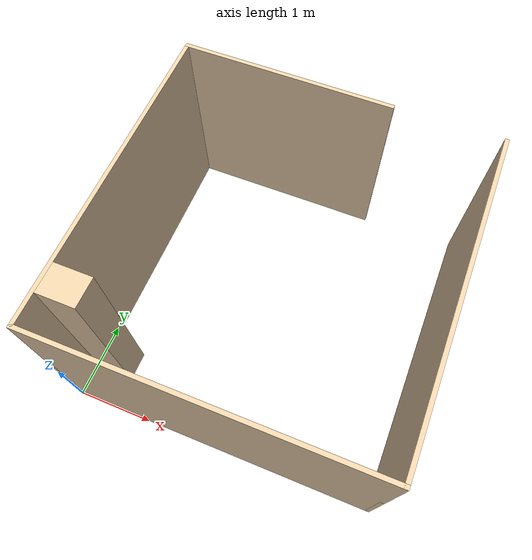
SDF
<?xml version="1.0"?>
<sdf version="1.7">

	<model name="Office2Walls">

		<static>true</static>
		<link name="office">
			<collision name="left_wall_collision">
				<pose>0.025 2.02 1.25 1.5708 0 1.5708</pose>
				<geometry>
					<box>
						<size>4.04 2.5 0.05</size>
					</box>
				</geometry>
			</collision>
			<visual name="left_wall_visual">
				<pose>0.025 2.02 1.25 1.5708 0 1.5708</pose>
				<geometry>
					<box>
						<size>4.04 2.5 0.05</size>
						</box>
				</geometry>
				<material>
					<script>
						<uri>file://media/materials/scripts/gazebo.material</uri>
						<name>Gazebo/Grey</name>
					</script>

					<ambient>1 1 1 1</ambient>
					<diffuse>0.9098 0.80392 0.65882 1</diffuse>
					<specular>0.02 0.02 0.02 1</specular>
					<emissive>0 0 0 1</emissive>
				</material>
			</visual>

			<collision name="front_wall_collision">
				<pose>1.345 4.015 1.25 1.5708 0 0</pose>
				<geometry>
					<box>
						<size>2.69 2.5 0.05</size>
					</box>
				</geometry>
			</collision>
			<visual name="front_wall_visual">
				<pose>1.345 4.015 1.25 1.5708 0 0</pose>
				<geometry>
					<box>
						<size>2.69 2.5 0.05</size>
					</box>
				</geometry>
				<material>
					<script>
						<uri>file://media/materials/scripts/gazebo.material</uri>
						<name>Gazebo/Grey</name>
					</script>

					<ambient>1 1 1 1</ambient>
					<diffuse>0.9098 0.80392 0.65882 1</diffuse>
					<specular>0.02 0.02 0.02 1</specular>
					<emissive>0 0 0 1</emissive>
				</material>
			</visual>

			<collision name="right_wall_collision">
				<pose>4.015 2.02 1.25 1.5708 0 1.5708</pose>
				<geometry>
					<box>
						<size>4.04 2.5 0.05</size>
					</box>
				</geometry>
			</collision>
			<visual name="right_wall_visual">
				<pose>4.015 2.02 1.25 1.5708 0 1.5708</pose>
				<geometry>
					<box>
						<size>4.04 2.5 0.05</size>
					</box>
				</geometry>
				<material>
					<script>
						<uri>file://media/materials/scripts/gazebo.material</uri>
						<name>Gazebo/Grey</name>
					</script>

					<ambient>1 1 1 1</ambient>
					<diffuse>0.9098 0.80392 0.65882 1</diffuse>
					<specular>0.02 0.02 0.02 1</specular>
					<emissive>0 0 0 1</emissive>
				</material>
			</visual>

			<collision name="back_wall_collision">
				<pose>2.02 0.025 1.25 1.5708 0 0</pose>
				<geometry>
					<box>
						<size>4.04 2.5 0.05</size>
					</box>
				</geometry>
			</collision>
			<visual name="back_wall_visual">
				<pose>2.02 0.025 1.25 1.5708  0 0</pose>
				<geometry>
					<box>
						<size>4.04 2.5 0.05</size>
					</box>
				</geometry>
				<material>
					<script>
						<uri>file://media/materials/scripts/gazebo.material</uri>
						<name>Gazebo/Grey</name>
					</script>

					<ambient>1 1 1 1</ambient>
					<diffuse>0.9098 0.80392 0.65882 1</diffuse>
					<specular>0.02 0.02 0.02 1</specular>
					<emissive>0 0 0 1</emissive>
				</material>
			</visual>

			<collision name="column_collision">
				<pose> 0.285 0.6 1.25 0 0 0</pose>
				<geometry>
					<box>
						<size>0.47 0.37 2.5</size>
					</box>
				</geometry>
			</collision>
			<visual name="column_visual">
				<pose>0.285 0.6 1.25 0 0 0</pose>
				<geometry>
					<box>
						<size>0.47 0.37 2.5</size>
					</box>
				</geometry>
				<material>
					<script>
						<uri>file://media/materials/scripts/gazebo.material</uri>
						<name>Gazebo/Grey</name>
					</script>

					<ambient>1 1 1 1</ambient>
					<diffuse>0.9098 0.80392 0.65882 1</diffuse>
					<specular>0.02 0.02 0.02 1</specular>
					<emissive>0 0 0 1</emissive>
				</material>
			</visual>
		</link>
	</model>
</sdf>
